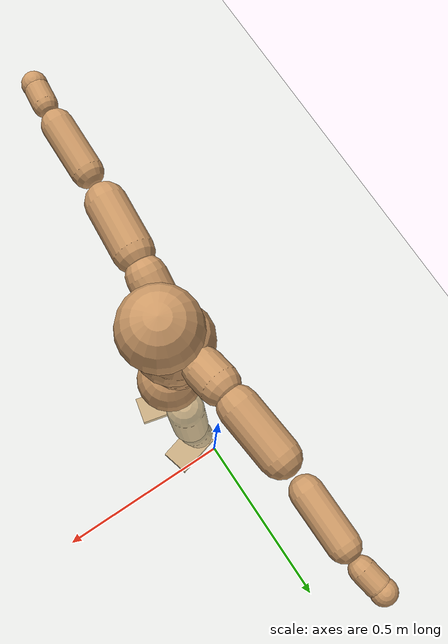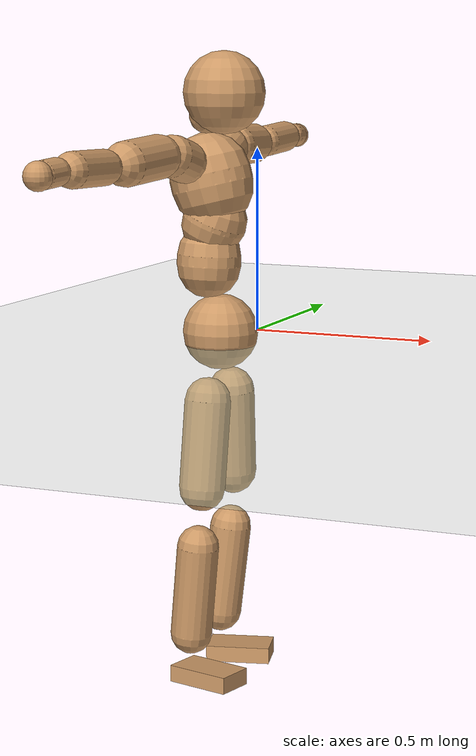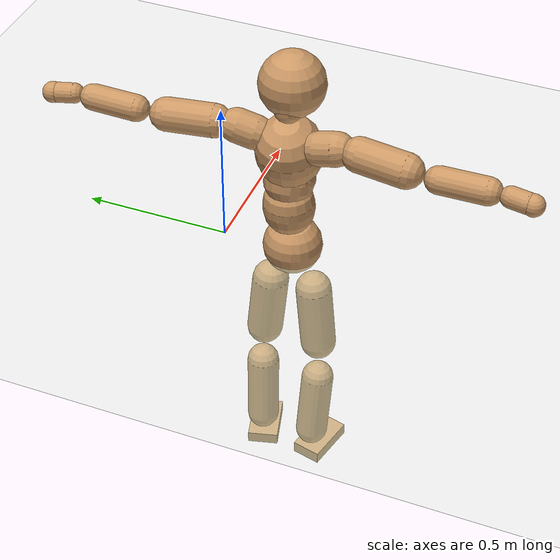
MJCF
<mujoco model="humanoid">
  <compiler coordinate="local"/>
  <default>
    <joint damping="0.0" armature="0.01" stiffness="0.0" limited="true"/>
    <geom conaffinity="1" condim="3" contype="7" margin="0.001" rgba="0.8 0.6 .4 1"/>
  </default>
  <asset>
    <texture type="skybox" builtin="gradient" rgb1=".4 .5 .6" rgb2="0 0 0" width="100" height="100"/>
    <texture builtin="flat" height="1278" mark="cross" markrgb="1 1 1" name="texgeom" random="0.01" rgb1="0.8 0.6 0.4" rgb2="0.8 0.6 0.4" type="cube" width="127"/>
    <texture builtin="checker" height="100" name="texplane" rgb1="0 0 0" rgb2="0.8 0.8 0.8" type="2d" width="100"/>
    <material name="MatPlane" reflectance="0.5" shininess="1" specular="1" texrepeat="60 60" texture="texplane"/>
    <material name="geom" texture="texgeom" texuniform="true"/>
  </asset>
  <worldbody>
    <light cutoff="100" diffuse="1 1 1" dir="-0 0 -1.3" directional="true" exponent="1" pos="0 0 1.3" specular=".1 .1 .1"/>
    <geom conaffinity="1" condim="3" name="floor" pos="0 0 0" rgba="0.8 0.9 0.8 1" size="100 100 .2" type="plane" material="MatPlane"/>
    <body name="Pelvis" pos="-0.0017 -0.2469 0.0329">
      <freejoint name="Pelvis"/>
      <geom type="sphere" contype="1" conaffinity="1" density="500" size="0.0999" pos="0.0000 0.0000 0.0000" name="Pelvis"/>
      <body name="L_Hip" pos="-0.0022 0.0708 -0.095">
        <joint name="L_Hip_x" type="hinge" pos="0 0 0" axis="1 0 0" stiffness="800" damping="80" armature="0.02" range="-180.0000 180.0000"/>
        <joint name="L_Hip_y" type="hinge" pos="0 0 0" axis="0 1 0" stiffness="800" damping="80" armature="0.02" range="-180.0000 180.0000"/>
        <joint name="L_Hip_z" type="hinge" pos="0 0 0" axis="0 0 1" stiffness="800" damping="80" armature="0.02" range="-180.0000 180.0000"/>
        <geom type="capsule" contype="1" conaffinity="1" density="500" fromto="-0.0013 0.0071 -0.0759 -0.0053 0.0282 -0.3038" size="0.0619" name="L_Hip"/>
        <body name="L_Knee" pos="-0.0066 0.0353 -0.3797">
          <joint name="L_Knee_x" type="hinge" pos="0 0 0" axis="1 0 0" stiffness="800" damping="80" armature="0.02" range="-180.0000 180.0000"/>
          <joint name="L_Knee_y" type="hinge" pos="0 0 0" axis="0 1 0" stiffness="800" damping="80" armature="0.02" range="-180.0000 180.0000"/>
          <joint name="L_Knee_z" type="hinge" pos="0 0 0" axis="0 0 1" stiffness="800" damping="80" armature="0.02" range="-180.0000 180.0000"/>
          <geom type="capsule" contype="1" conaffinity="1" density="500" fromto="-0.0088 -0.0030 -0.0812 -0.0353 -0.0120 -0.3250" size="0.0556" name="L_Knee"/>
          <body name="L_Ankle" pos="-0.0442 -0.0149 -0.4062">
            <joint name="L_Ankle_x" type="hinge" pos="0 0 0" axis="1 0 0" stiffness="800" damping="80" armature="0.02" range="-180.0000 180.0000"/>
            <joint name="L_Ankle_y" type="hinge" pos="0 0 0" axis="0 1 0" stiffness="800" damping="80" armature="0.02" range="-180.0000 180.0000"/>
            <joint name="L_Ankle_z" type="hinge" pos="0 0 0" axis="0 0 1" stiffness="800" damping="80" armature="0.02" range="-180.0000 180.0000"/>
            <geom type="box" contype="1" conaffinity="1" density="500" pos="0.0615 0.0162 -0.0288" size="0.0864 0.0535 0.0216" quat="0.9917 0.0000 0.0000 0.1286" name="L_Ankle"/>
            <body name="L_Toe" pos="0.1231 0.0324 -0.0576">
              <joint name="L_Toe_x" type="hinge" pos="0 0 0" axis="1 0 0" stiffness="500" damping="50" armature="0.02" range="-180.0000 180.0000"/>
              <joint name="L_Toe_y" type="hinge" pos="0 0 0" axis="0 1 0" stiffness="500" damping="50" armature="0.02" range="-180.0000 180.0000"/>
              <joint name="L_Toe_z" type="hinge" pos="0 0 0" axis="0 0 1" stiffness="500" damping="50" armature="0.02" range="-180.0000 180.0000"/>
              <geom type="box" contype="1" conaffinity="1" density="500" pos="0.0000 0.0000 0.0287" size="0.0011 0.0025 0.0011" quat="0.9910 0.0000 0.0000 0.1340" name="L_Toe"/>
            </body>
          </body>
        </body>
      </body>
      <body name="R_Hip" pos="-0.0004 -0.069 -0.0942">
        <joint name="R_Hip_x" type="hinge" pos="0 0 0" axis="1 0 0" stiffness="800" damping="80" armature="0.02" range="-180.0000 180.0000"/>
        <joint name="R_Hip_y" type="hinge" pos="0 0 0" axis="0 1 0" stiffness="800" damping="80" armature="0.02" range="-180.0000 180.0000"/>
        <joint name="R_Hip_z" type="hinge" pos="0 0 0" axis="0 0 1" stiffness="800" damping="80" armature="0.02" range="-180.0000 180.0000"/>
        <geom type="capsule" contype="1" conaffinity="1" density="500" fromto="-0.0024 -0.0078 -0.0775 -0.0094 -0.0311 -0.3099" size="0.0608" name="R_Hip"/>
        <body name="R_Knee" pos="-0.0118 -0.0389 -0.3874">
          <joint name="R_Knee_x" type="hinge" pos="0 0 0" axis="1 0 0" stiffness="800" damping="80" armature="0.02" range="-180.0000 180.0000"/>
          <joint name="R_Knee_y" type="hinge" pos="0 0 0" axis="0 1 0" stiffness="800" damping="80" armature="0.02" range="-180.0000 180.0000"/>
          <joint name="R_Knee_z" type="hinge" pos="0 0 0" axis="0 0 1" stiffness="800" damping="80" armature="0.02" range="-180.0000 180.0000"/>
          <geom type="capsule" contype="1" conaffinity="1" density="500" fromto="-0.0086 0.0034 -0.0817 -0.0344 0.0134 -0.3268" size="0.0556" name="R_Knee"/>
          <body name="R_Ankle" pos="-0.043 0.0168 -0.4085">
            <joint name="R_Ankle_x" type="hinge" pos="0 0 0" axis="1 0 0" stiffness="800" damping="80" armature="0.02" range="-180.0000 180.0000"/>
            <joint name="R_Ankle_y" type="hinge" pos="0 0 0" axis="0 1 0" stiffness="800" damping="80" armature="0.02" range="-180.0000 180.0000"/>
            <joint name="R_Ankle_z" type="hinge" pos="0 0 0" axis="0 0 1" stiffness="800" damping="80" armature="0.02" range="-180.0000 180.0000"/>
            <geom type="box" contype="1" conaffinity="1" density="500" pos="0.0639 -0.0150 -0.0252" size="0.0893 0.0513 0.0223" quat="0.9934 0.0000 0.0000 -0.1151" name="R_Ankle"/>
            <body name="R_Toe" pos="0.1279 -0.03 -0.0505">
              <joint name="R_Toe_x" type="hinge" pos="0 0 0" axis="1 0 0" stiffness="500" damping="50" armature="0.02" range="-180.0000 180.0000"/>
              <joint name="R_Toe_y" type="hinge" pos="0 0 0" axis="0 1 0" stiffness="500" damping="50" armature="0.02" range="-180.0000 180.0000"/>
              <joint name="R_Toe_z" type="hinge" pos="0 0 0" axis="0 0 1" stiffness="500" damping="50" armature="0.02" range="-180.0000 180.0000"/>
              <geom type="box" contype="1" conaffinity="1" density="500" pos="0.0000 0.0000 0.0259" size="0.0011 0.0025 0.0011" quat="0.9944 0.0000 0.0000 -0.1061" name="R_Toe"/>
            </body>
          </body>
        </body>
      </body>
      <body name="Torso" pos="-0.0345 -0.0025 0.1161">
        <joint name="Torso_x" type="hinge" pos="0 0 0" axis="1 0 0" stiffness="1000" damping="100" armature="0.02" range="-180.0000 180.0000"/>
        <joint name="Torso_y" type="hinge" pos="0 0 0" axis="0 1 0" stiffness="1000" damping="100" armature="0.02" range="-180.0000 180.0000"/>
        <joint name="Torso_z" type="hinge" pos="0 0 0" axis="0 0 1" stiffness="1000" damping="100" armature="0.02" range="-180.0000 180.0000"/>
        <geom type="capsule" contype="1" conaffinity="1" density="500" fromto="0.0020 0.0045 0.0851 0.0013 0.0030 0.0567" size="0.0847" name="Torso"/>
        <body name="Spine" pos="0.0033 0.0075 0.1418">
          <joint name="Spine_x" type="hinge" pos="0 0 0" axis="1 0 0" stiffness="1000" damping="100" armature="0.02" range="-180.0000 180.0000"/>
          <joint name="Spine_y" type="hinge" pos="0 0 0" axis="0 1 0" stiffness="1000" damping="100" armature="0.02" range="-180.0000 180.0000"/>
          <joint name="Spine_z" type="hinge" pos="0 0 0" axis="0 0 1" stiffness="1000" damping="100" armature="0.02" range="-180.0000 180.0000"/>
          <geom type="capsule" contype="1" conaffinity="1" density="500" fromto="0.0151 0.0002 0.0354 0.0101 0.0001 0.0236" size="0.0846" name="Spine"/>
          <body name="Chest" pos="0.0251 0.0003 0.059">
            <joint name="Chest_x" type="hinge" pos="0 0 0" axis="1 0 0" stiffness="1000" damping="100" armature="0.02" range="-180.0000 180.0000"/>
            <joint name="Chest_y" type="hinge" pos="0 0 0" axis="0 1 0" stiffness="1000" damping="100" armature="0.02" range="-180.0000 180.0000"/>
            <joint name="Chest_z" type="hinge" pos="0 0 0" axis="0 0 1" stiffness="1000" damping="100" armature="0.02" range="-180.0000 180.0000"/>
            <geom type="capsule" contype="1" conaffinity="1" density="500" fromto="-0.0242 -0.0016 0.0994 -0.0161 -0.0011 0.0662" size="0.1079" name="Chest"/>
            <body name="Neck" pos="-0.0418 -0.0034 0.2353">
              <joint name="Neck_x" type="hinge" pos="0 0 0" axis="1 0 0" stiffness="500" damping="50" armature="0.02" range="-180.0000 180.0000"/>
              <joint name="Neck_y" type="hinge" pos="0 0 0" axis="0 1 0" stiffness="500" damping="50" armature="0.02" range="-180.0000 180.0000"/>
              <joint name="Neck_z" type="hinge" pos="0 0 0" axis="0 0 1" stiffness="500" damping="50" armature="0.02" range="-180.0000 180.0000"/>
              <geom type="capsule" contype="1" conaffinity="1" density="500" fromto="0.0115 0.0012 0.0148 0.0459 0.0050 0.0592" size="0.0481" name="Neck"/>
              <body name="Head" pos="0.0574 0.0062 0.074">
                <joint name="Head_x" type="hinge" pos="0 0 0" axis="1 0 0" stiffness="500" damping="50" armature="0.02" range="-180.0000 180.0000"/>
                <joint name="Head_y" type="hinge" pos="0 0 0" axis="0 1 0" stiffness="500" damping="50" armature="0.02" range="-180.0000 180.0000"/>
                <joint name="Head_z" type="hinge" pos="0 0 0" axis="0 0 1" stiffness="500" damping="50" armature="0.02" range="-180.0000 180.0000"/>
                <geom type="sphere" contype="1" conaffinity="1" density="500" size="0.1079" pos="0.0000 0.0000 0.0000" name="Head"/>
              </body>
            </body>
            <body name="L_Thorax" pos="-0.0375 0.0843 0.1324">
              <joint name="L_Thorax_x" type="hinge" pos="0 0 0" axis="1 0 0" stiffness="500" damping="50" armature="0.02" range="-180.0000 180.0000"/>
              <joint name="L_Thorax_y" type="hinge" pos="0 0 0" axis="0 1 0" stiffness="500" damping="50" armature="0.02" range="-180.0000 180.0000"/>
              <joint name="L_Thorax_z" type="hinge" pos="0 0 0" axis="0 0 1" stiffness="500" damping="50" armature="0.02" range="-180.0000 180.0000"/>
              <geom type="capsule" contype="1" conaffinity="1" density="500" fromto="-0.0024 0.0194 0.0054 -0.0096 0.0776 0.0214" size="0.0564" name="L_Thorax"/>
              <body name="L_Shoulder" pos="-0.012 0.097 0.0268">
                <joint name="L_Shoulder_x" type="hinge" pos="0 0 0" axis="1 0 0" stiffness="500" damping="50" armature="0.02" range="-720.0000 720.0000"/>
                <joint name="L_Shoulder_y" type="hinge" pos="0 0 0" axis="0 1 0" stiffness="500" damping="50" armature="0.02" range="-720.0000 720.0000"/>
                <joint name="L_Shoulder_z" type="hinge" pos="0 0 0" axis="0 0 1" stiffness="500" damping="50" armature="0.02" range="-720.0000 720.0000"/>
                <geom type="capsule" contype="1" conaffinity="1" density="500" fromto="-0.0053 0.0526 -0.0020 -0.0211 0.2102 -0.0080" size="0.0554" name="L_Shoulder"/>
                <body name="L_Elbow" pos="-0.0263 0.2628 -0.01">
                  <joint name="L_Elbow_x" type="hinge" pos="0 0 0" axis="1 0 0" stiffness="500" damping="50" armature="0.02" range="-720.0000 720.0000"/>
                  <joint name="L_Elbow_y" type="hinge" pos="0 0 0" axis="0 1 0" stiffness="500" damping="50" armature="0.02" range="-720.0000 720.0000"/>
                  <joint name="L_Elbow_z" type="hinge" pos="0 0 0" axis="0 0 1" stiffness="500" damping="50" armature="0.02" range="-720.0000 720.0000"/>
                  <geom type="capsule" contype="1" conaffinity="1" density="500" fromto="-0.0004 0.0499 0.0016 -0.0016 0.1997 0.0065" size="0.0436" name="L_Elbow"/>
                  <body name="L_Wrist" pos="-0.002 0.2496 0.0081">
                    <joint name="L_Wrist_x" type="hinge" pos="0 0 0" axis="1 0 0" stiffness="300" damping="30" armature="0.02" range="-180.0000 180.0000"/>
                    <joint name="L_Wrist_y" type="hinge" pos="0 0 0" axis="0 1 0" stiffness="300" damping="30" armature="0.02" range="-180.0000 180.0000"/>
                    <joint name="L_Wrist_z" type="hinge" pos="0 0 0" axis="0 0 1" stiffness="300" damping="30" armature="0.02" range="-180.0000 180.0000"/>
                    <geom type="capsule" contype="1" conaffinity="1" density="500" fromto="-0.0032 0.0174 -0.0013 -0.0128 0.0695 -0.0053" size="0.0334" name="L_Wrist"/>
                    <body name="L_Hand" pos="-0.0161 0.0869 -0.0066">
                      <joint name="L_Hand_x" type="hinge" pos="0 0 0" axis="1 0 0" stiffness="300" damping="30" armature="0.02" range="-180.0000 180.0000"/>
                      <joint name="L_Hand_y" type="hinge" pos="0 0 0" axis="0 1 0" stiffness="300" damping="30" armature="0.02" range="-180.0000 180.0000"/>
                      <joint name="L_Hand_z" type="hinge" pos="0 0 0" axis="0 0 1" stiffness="300" damping="30" armature="0.02" range="-180.0000 180.0000"/>
                      <geom type="sphere" contype="1" conaffinity="1" density="500" size="0.0348" pos="0.0000 0.0000 0.0000" name="L_Hand"/>
                    </body>
                  </body>
                </body>
              </body>
            </body>
            <body name="R_Thorax" pos="-0.0417 -0.0891 0.1292">
              <joint name="R_Thorax_x" type="hinge" pos="0 0 0" axis="1 0 0" stiffness="500" damping="50" armature="0.02" range="-180.0000 180.0000"/>
              <joint name="R_Thorax_y" type="hinge" pos="0 0 0" axis="0 1 0" stiffness="500" damping="50" armature="0.02" range="-180.0000 180.0000"/>
              <joint name="R_Thorax_z" type="hinge" pos="0 0 0" axis="0 0 1" stiffness="500" damping="50" armature="0.02" range="-180.0000 180.0000"/>
              <geom type="capsule" contype="1" conaffinity="1" density="500" fromto="-0.0019 -0.0206 0.0061 -0.0075 -0.0823 0.0245" size="0.0557" name="R_Thorax"/>
              <body name="R_Shoulder" pos="-0.0094 -0.1029 0.0307">
                <joint name="R_Shoulder_x" type="hinge" pos="0 0 0" axis="1 0 0" stiffness="500" damping="50" armature="0.02" range="-720.0000 720.0000"/>
                <joint name="R_Shoulder_y" type="hinge" pos="0 0 0" axis="0 1 0" stiffness="500" damping="50" armature="0.02" range="-720.0000 720.0000"/>
                <joint name="R_Shoulder_z" type="hinge" pos="0 0 0" axis="0 0 1" stiffness="500" damping="50" armature="0.02" range="-720.0000 720.0000"/>
                <geom type="capsule" contype="1" conaffinity="1" density="500" fromto="-0.0045 -0.0513 -0.0025 -0.0181 -0.2051 -0.0099" size="0.0572" name="R_Shoulder"/>
                <body name="R_Elbow" pos="-0.0226 -0.2564 -0.0124">
                  <joint name="R_Elbow_x" type="hinge" pos="0 0 0" axis="1 0 0" stiffness="500" damping="50" armature="0.02" range="-720.0000 720.0000"/>
                  <joint name="R_Elbow_y" type="hinge" pos="0 0 0" axis="0 1 0" stiffness="500" damping="50" armature="0.02" range="-720.0000 720.0000"/>
                  <joint name="R_Elbow_z" type="hinge" pos="0 0 0" axis="0 0 1" stiffness="500" damping="50" armature="0.02" range="-720.0000 720.0000"/>
                  <geom type="capsule" contype="1" conaffinity="1" density="500" fromto="-0.0013 -0.0513 0.0017 -0.0051 -0.2052 0.0067" size="0.0444" name="R_Elbow"/>
                  <body name="R_Wrist" pos="-0.0063 -0.2565 0.0084">
                    <joint name="R_Wrist_x" type="hinge" pos="0 0 0" axis="1 0 0" stiffness="300" damping="30" armature="0.02" range="-180.0000 180.0000"/>
                    <joint name="R_Wrist_y" type="hinge" pos="0 0 0" axis="0 1 0" stiffness="300" damping="30" armature="0.02" range="-180.0000 180.0000"/>
                    <joint name="R_Wrist_z" type="hinge" pos="0 0 0" axis="0 0 1" stiffness="300" damping="30" armature="0.02" range="-180.0000 180.0000"/>
                    <geom type="capsule" contype="1" conaffinity="1" density="500" fromto="-0.0020 -0.0175 -0.0010 -0.0080 -0.0702 -0.0040" size="0.0344" name="R_Wrist"/>
                    <body name="R_Hand" pos="-0.01 -0.0877 -0.0051">
                      <joint name="R_Hand_x" type="hinge" pos="0 0 0" axis="1 0 0" stiffness="300" damping="30" armature="0.02" range="-180.0000 180.0000"/>
                      <joint name="R_Hand_y" type="hinge" pos="0 0 0" axis="0 1 0" stiffness="300" damping="30" armature="0.02" range="-180.0000 180.0000"/>
                      <joint name="R_Hand_z" type="hinge" pos="0 0 0" axis="0 0 1" stiffness="300" damping="30" armature="0.02" range="-180.0000 180.0000"/>
                      <geom type="sphere" contype="1" conaffinity="1" density="500" size="0.0354" pos="0.0000 0.0000 0.0000" name="R_Hand"/>
                    </body>
                  </body>
                </body>
              </body>
            </body>
          </body>
        </body>
      </body>
    </body>
  </worldbody>
  <actuator>
    <motor name="L_Hip_x" joint="L_Hip_x" gear="500"/>
    <motor name="L_Hip_y" joint="L_Hip_y" gear="500"/>
    <motor name="L_Hip_z" joint="L_Hip_z" gear="500"/>
    <motor name="L_Knee_x" joint="L_Knee_x" gear="500"/>
    <motor name="L_Knee_y" joint="L_Knee_y" gear="500"/>
    <motor name="L_Knee_z" joint="L_Knee_z" gear="500"/>
    <motor name="L_Ankle_x" joint="L_Ankle_x" gear="500"/>
    <motor name="L_Ankle_y" joint="L_Ankle_y" gear="500"/>
    <motor name="L_Ankle_z" joint="L_Ankle_z" gear="500"/>
    <motor name="L_Toe_x" joint="L_Toe_x" gear="500"/>
    <motor name="L_Toe_y" joint="L_Toe_y" gear="500"/>
    <motor name="L_Toe_z" joint="L_Toe_z" gear="500"/>
    <motor name="R_Hip_x" joint="R_Hip_x" gear="500"/>
    <motor name="R_Hip_y" joint="R_Hip_y" gear="500"/>
    <motor name="R_Hip_z" joint="R_Hip_z" gear="500"/>
    <motor name="R_Knee_x" joint="R_Knee_x" gear="500"/>
    <motor name="R_Knee_y" joint="R_Knee_y" gear="500"/>
    <motor name="R_Knee_z" joint="R_Knee_z" gear="500"/>
    <motor name="R_Ankle_x" joint="R_Ankle_x" gear="500"/>
    <motor name="R_Ankle_y" joint="R_Ankle_y" gear="500"/>
    <motor name="R_Ankle_z" joint="R_Ankle_z" gear="500"/>
    <motor name="R_Toe_x" joint="R_Toe_x" gear="500"/>
    <motor name="R_Toe_y" joint="R_Toe_y" gear="500"/>
    <motor name="R_Toe_z" joint="R_Toe_z" gear="500"/>
    <motor name="Torso_x" joint="Torso_x" gear="500"/>
    <motor name="Torso_y" joint="Torso_y" gear="500"/>
    <motor name="Torso_z" joint="Torso_z" gear="500"/>
    <motor name="Spine_x" joint="Spine_x" gear="500"/>
    <motor name="Spine_y" joint="Spine_y" gear="500"/>
    <motor name="Spine_z" joint="Spine_z" gear="500"/>
    <motor name="Chest_x" joint="Chest_x" gear="500"/>
    <motor name="Chest_y" joint="Chest_y" gear="500"/>
    <motor name="Chest_z" joint="Chest_z" gear="500"/>
    <motor name="Neck_x" joint="Neck_x" gear="500"/>
    <motor name="Neck_y" joint="Neck_y" gear="500"/>
    <motor name="Neck_z" joint="Neck_z" gear="500"/>
    <motor name="Head_x" joint="Head_x" gear="500"/>
    <motor name="Head_y" joint="Head_y" gear="500"/>
    <motor name="Head_z" joint="Head_z" gear="500"/>
    <motor name="L_Thorax_x" joint="L_Thorax_x" gear="500"/>
    <motor name="L_Thorax_y" joint="L_Thorax_y" gear="500"/>
    <motor name="L_Thorax_z" joint="L_Thorax_z" gear="500"/>
    <motor name="L_Shoulder_x" joint="L_Shoulder_x" gear="500"/>
    <motor name="L_Shoulder_y" joint="L_Shoulder_y" gear="500"/>
    <motor name="L_Shoulder_z" joint="L_Shoulder_z" gear="500"/>
    <motor name="L_Elbow_x" joint="L_Elbow_x" gear="500"/>
    <motor name="L_Elbow_y" joint="L_Elbow_y" gear="500"/>
    <motor name="L_Elbow_z" joint="L_Elbow_z" gear="500"/>
    <motor name="L_Wrist_x" joint="L_Wrist_x" gear="500"/>
    <motor name="L_Wrist_y" joint="L_Wrist_y" gear="500"/>
    <motor name="L_Wrist_z" joint="L_Wrist_z" gear="500"/>
    <motor name="L_Hand_x" joint="L_Hand_x" gear="500"/>
    <motor name="L_Hand_y" joint="L_Hand_y" gear="500"/>
    <motor name="L_Hand_z" joint="L_Hand_z" gear="500"/>
    <motor name="R_Thorax_x" joint="R_Thorax_x" gear="500"/>
    <motor name="R_Thorax_y" joint="R_Thorax_y" gear="500"/>
    <motor name="R_Thorax_z" joint="R_Thorax_z" gear="500"/>
    <motor name="R_Shoulder_x" joint="R_Shoulder_x" gear="500"/>
    <motor name="R_Shoulder_y" joint="R_Shoulder_y" gear="500"/>
    <motor name="R_Shoulder_z" joint="R_Shoulder_z" gear="500"/>
    <motor name="R_Elbow_x" joint="R_Elbow_x" gear="500"/>
    <motor name="R_Elbow_y" joint="R_Elbow_y" gear="500"/>
    <motor name="R_Elbow_z" joint="R_Elbow_z" gear="500"/>
    <motor name="R_Wrist_x" joint="R_Wrist_x" gear="500"/>
    <motor name="R_Wrist_y" joint="R_Wrist_y" gear="500"/>
    <motor name="R_Wrist_z" joint="R_Wrist_z" gear="500"/>
    <motor name="R_Hand_x" joint="R_Hand_x" gear="500"/>
    <motor name="R_Hand_y" joint="R_Hand_y" gear="500"/>
    <motor name="R_Hand_z" joint="R_Hand_z" gear="500"/>
  </actuator>
  <contact>
    <exclude body1="Torso" body2="Chest"/>
    <exclude body1="Head" body2="Chest"/>
    <exclude body1="R_Knee" body2="R_Toe"/>
    <exclude body1="R_Knee" body2="L_Ankle"/>
    <exclude body1="R_Knee" body2="L_Toe"/>
    <exclude body1="L_Knee" body2="L_Toe"/>
    <exclude body1="L_Knee" body2="R_Ankle"/>
    <exclude body1="L_Knee" body2="R_Toe"/>
    <exclude body1="L_Shoulder" body2="Chest"/>
    <exclude body1="R_Shoulder" body2="Chest"/>
  </contact>
  <sensor/>
  <size njmax="700" nconmax="700"/>
</mujoco>
